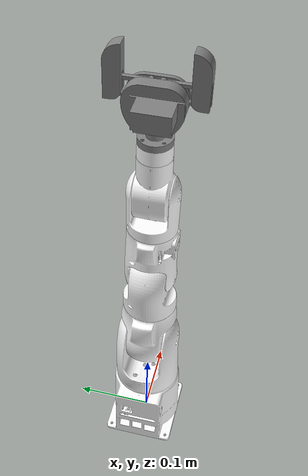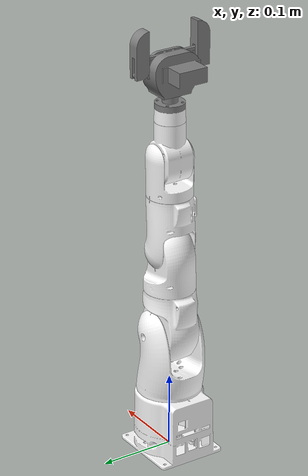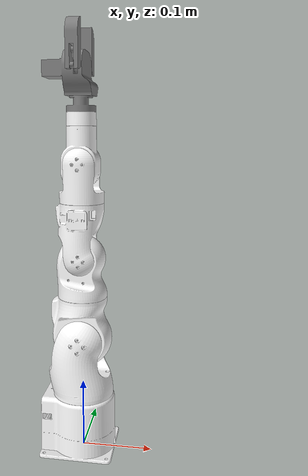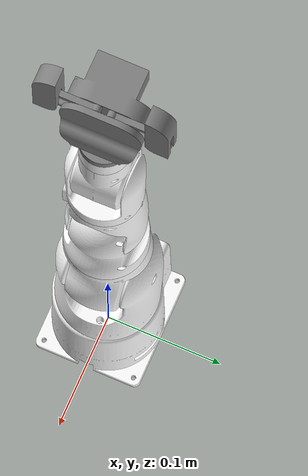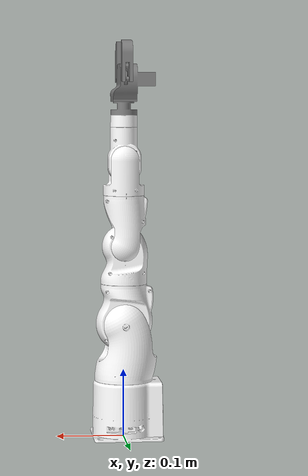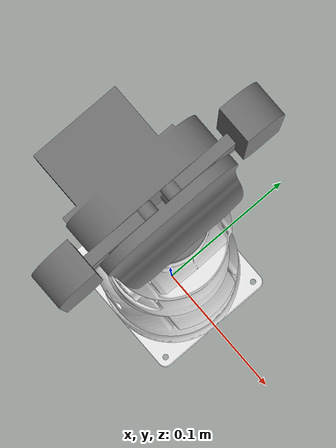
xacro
<?xml version="1.0" ?>
<!-- |    This document was autogenerated by xacro from myarm_300_pi_thorgripper.urdf  | -->
<!-- |    EDITING THIS FILE BY HAND IS NOT RECOMMENDED                                 | -->
<robot name="myarm_300_pi_thorgripper">

<!-- ===== Custom Materials ===== -->
<material name="white_arm">
  <color rgba="1.0 1.0 1.0 1.0"/>
</material>

<material name="gray_part">
  <color rgba="0.5 0.5 0.5 1.0"/>
</material>

  <!-- Links definitions -->

  <link name="base">
    <visual>
      <geometry>
        <mesh filename="package://myarm_300_pi/meshes/base.stl"/>
      </geometry>
      <origin rpy=" 0 0 0" xyz="0.0 0 0 "/>
      <material name="white_arm"/>
    </visual>
    <collision>
      <geometry>
        <mesh filename="package://myarm_300_pi/meshes/base.stl"/>
      </geometry>
      <origin rpy=" 0 0 0" xyz="0.0 0 0 "/>
    </collision>
  </link>

  <link name="link1">
    <visual>
      <geometry>
        <mesh filename="package://myarm_300_pi/meshes/j1.stl"/>
      </geometry>
      <origin rpy=" 0 0 0" xyz="0.0 0 -0.086 "/>
      <material name="white_arm"/>
    </visual>
    <collision>
      <geometry>
        <mesh filename="package://myarm_300_pi/meshes/j1.stl"/>
      </geometry>
      <origin rpy=" 0 0 0" xyz="0.0 0 -0.086 "/>
    </collision>
  </link>

  <link name="link2">
    <visual>
      <geometry>
        <mesh filename="package://myarm_300_pi/meshes/j2.stl"/>
      </geometry>
      <origin rpy=" 3.14159 0 -1.5708 " xyz="0.0 0 0.0 "/>
      <material name="white_arm"/>
    </visual>
    <collision>
      <geometry>
        <mesh filename="package://myarm_300_pi/meshes/j2.stl"/>
      </geometry>
      <origin rpy=" 3.14159 0 -1.5708" xyz="0.0 0 0.0 "/>
    </collision>
  </link>

  <link name="link3">
    <visual>
      <geometry>
        <mesh filename="package://myarm_300_pi/meshes/j3.stl"/>
      </geometry>
      <origin rpy=" 0 0 0" xyz="0.0 0 -0.056 "/>
      <material name="white_arm"/>
    </visual>
    <collision>
      <geometry>
        <mesh filename="package://myarm_300_pi/meshes/j3.stl"/>
      </geometry>
      <origin rpy=" 0 0 0" xyz="0.0 0 -0.056"/>
      <material name="white_arm"/>
    </collision>
  </link>

  <link name="link4">
    <visual>
      <geometry>
        <mesh filename="package://myarm_300_pi/meshes/j4.stl"/>
      </geometry>
      <origin rpy="0 0 1.5708" xyz="0.0 0.000 0 "/>
      <material name="white_arm"/>
    </visual>
    <collision>
      <geometry>
        <mesh filename="package://myarm_300_pi/meshes/j4.stl"/>
      </geometry>
      <origin rpy="0 0 1.5708" xyz="0.0 0.000 0 "/>
    </collision>
  </link>

  <link name="link5">
    <visual>
      <geometry>
        <mesh filename="package://myarm_300_pi/meshes/j5.stl"/>
      </geometry>
      <origin rpy=" 0 0 0" xyz="0 0.00 -0.0525 "/>
      <material name="white_arm"/>
    </visual>
    <collision>
      <geometry>
        <mesh filename="package://myarm_300_pi/meshes/j5.stl"/>
      </geometry>
      <origin rpy=" 0 0 0" xyz="0 0.00 -0.0525 "/>
    </collision>
  </link>

  <link name="link6">
    <visual>
      <geometry>
        <mesh filename="package://myarm_300_pi/meshes/j6.stl"/>
      </geometry>
      <origin rpy=" 0 0 1.5708" xyz="0.0 0.000 -0.0 "/>
      <material name="white_arm"/>
    </visual>
    <collision>
      <geometry>
        <mesh filename="package://myarm_300_pi/meshes/j6.stl"/>
      </geometry>
      <origin rpy=" 0 0 1.5708" xyz="0.0 0.000 -0.0 "/>
    </collision>
  </link>

  <link name="link7">
    <visual>
      <geometry>
        <mesh filename="package://myarm_300_pi/meshes/j7.stl"/>
      </geometry>
      <origin rpy=" 0 0 0" xyz="0.0002 -0.0002 -0.0185 "/>
      <material name="white_arm"/>
    </visual>
    <collision>
      <geometry>
        <mesh filename="package://myarm_300_pi/meshes/j7.stl"/>
      </geometry>
      <origin rpy=" 0 0 0" xyz="0.0002 -0.0002 -0.0185 "/>
    </collision>
  </link>

  <link name="gripper_base">
    <inertial>
      <origin rpy="0 0 0" xyz="0 0 0"/>
      <mass value="1.0"/>
      <inertia ixx="1.0" ixy="0.0" ixz="0.0" iyy="1.0" iyz="0.0" izz="1.0"/>
    </inertial>
    <visual>
      <origin rpy="0 0 0" xyz="0 0 0"/>
      <geometry>
        <mesh filename="package://myarm_300_pi/meshes/GripperBase.stl" scale="0.001 0.001 0.001"/>
      </geometry>
      <material name="gray_part"/>
    </visual>
    <collision>
      <origin rpy="0 0 0" xyz="0 0 0.0275"/>
      <geometry>
        <box size="0.065 0.0348 0.055"/>
      </geometry>
    </collision>
    <collision>
      <origin rpy="0 0 0" xyz="-0.004250 0.03125 0.0325"/>
      <geometry>
        <box size="0.0406 0.0277 0.020"/>
      </geometry>
    </collision>
  </link>

  <link name="gripper_mid_point">
    <inertial>
      <origin rpy="0 0 0" xyz="0 0 0"/>
      <mass value="1.0"/>
      <inertia ixx="1.0" ixy="0.0" ixz="0.0" iyy="1.0" iyz="0.0" izz="1.0"/>
    </inertial>
  </link>
  <link name="gripper_arm_gear_right">
    <inertial>
      <origin rpy="0 0 0" xyz="0 0 0"/>
      <mass value="1.0"/>
      <inertia ixx="1.0" ixy="0.0" ixz="0.0" iyy="1.0" iyz="0.0" izz="1.0"/>
    </inertial>
    <visual>
      <origin rpy="0 -1.570796326795 1.570796326795" xyz="0 0 0"/>
      <geometry>
        <mesh filename="package://myarm_300_pi/meshes/GripperArmGear.stl" scale="0.001 0.001 0.001"/>
      </geometry>
      <material name="gray_part"/>
    </visual>
    <collision>
      <origin rpy="0 0 0" xyz="0.0175 -0.0025 0.0"/>
      <geometry>
        <box size="0.035 0.005 0.004"/>
      </geometry>
    </collision>
  </link>

  <link name="gripper_arm_gear_left">
    <inertial>
      <origin rpy="0 0 0" xyz="0 0 0"/>
      <mass value="1.0"/>
      <inertia ixx="1.0" ixy="0.0" ixz="0.0" iyy="1.0" iyz="0.0" izz="1.0"/>
    </inertial>
    <visual>
      <origin rpy="0 1.570796326795 -1.570796326795" xyz="0 0 0"/>
      <geometry>
        <mesh filename="package://myarm_300_pi/meshes/GripperArmGear.stl" scale="0.001 0.001 0.001"/>
      </geometry>
      <material name="gray_part"/>
    </visual>
    <collision>
      <origin rpy="0 0 0" xyz="-0.0175 -0.0025 0.0"/>
      <geometry>
        <box size="0.035 0.005 0.004"/>
      </geometry>
    </collision>
  </link>

  <link name="gripper_arm_simple_right">
    <inertial>
      <origin rpy="0 0 0" xyz="0 0 0"/>
      <mass value="1.0"/>
      <inertia ixx="1.0" ixy="0.0" ixz="0.0" iyy="1.0" iyz="0.0" izz="1.0"/>
    </inertial>
    <visual>
      <origin rpy="0 -1.570796326795 1.570796326795" xyz="0 0 0"/>
      <geometry>
        <mesh filename="package://myarm_300_pi/meshes/GripperArm.stl" scale="0.001 0.001 0.001"/>
      </geometry>
      <material name="gray_part"/>
    </visual>
    <collision>
      <origin rpy="0 0 0" xyz="0.0175 -0.0025 0.0"/>
      <geometry>
        <box size="0.035 0.005 0.004"/>
      </geometry>
    </collision>
  </link>

  <link name="gripper_arm_simple_left">
    <inertial>
      <origin rpy="0 0 0" xyz="0 0 0"/>
      <mass value="1.0"/>
      <inertia ixx="1.0" ixy="0.0" ixz="0.0" iyy="1.0" iyz="0.0" izz="1.0"/>
    </inertial>
    <visual>
      <origin rpy="0 1.570796326795 -1.570796326795" xyz="0 0 0"/>
      <geometry>
        <mesh filename="package://myarm_300_pi/meshes/GripperArm.stl" scale="0.001 0.001 0.001"/>
      </geometry>
      <material name="gray_part"/>
    </visual>
    <collision>
      <origin rpy="0 0 0" xyz="-0.0175 -0.0025 0.0"/>
      <geometry>
        <box size="0.035 0.005 0.004"/>
      </geometry>
    </collision>
  </link>

  <link name="gripper_finger_right">
    <inertial>
      <origin rpy="0 0 0" xyz="0 0 0"/>
      <mass value="1.0"/>
      <inertia ixx="1.0" ixy="0.0" ixz="0.0" iyy="1.0" iyz="0.0" izz="1.0"/>
    </inertial>
    <visual>
      <origin rpy="0 0 0" xyz="0 0 0"/>
      <geometry>
        <mesh filename="package://myarm_300_pi/meshes/GripperFinger.stl" scale="0.001 0.001 0.001"/>
      </geometry>
      <material name="gray_part"/>
    </visual>
    <collision>
      <origin rpy="0 0 0" xyz="0.00525 0.026 0.00775"/>
      <geometry>
        <box size="0.0185 0.06 0.0155"/>
      </geometry>
    </collision>
  </link>

  <link name="gripper_finger_left">
    <inertial>
      <origin rpy="0 0 0" xyz="0 0 0"/>
      <mass value="1.0"/>
      <inertia ixx="1.0" ixy="0.0" ixz="0.0" iyy="1.0" iyz="0.0" izz="1.0"/>
    </inertial>
    <visual>
      <origin rpy="0 0 0" xyz="0 0 0"/>
      <geometry>
        <mesh filename="package://myarm_300_pi/meshes/GripperFinger.stl" scale="0.001 0.001 0.001"/>
      </geometry>
      <material name="gray_part"/>
    </visual>
    <collision>
      <origin rpy="0 0 0" xyz="0.00525 0.026 0.00775"/>
      <geometry>
        <box size="0.0185 0.06 0.0155"/>
      </geometry>
    </collision>
  </link>

  <!-- Joints definitions -->

  <joint name="joint1" type="revolute">
    <axis xyz="0 0 1"/>
    <limit effort="1000.0" lower="-2.7925" upper="2.7925" velocity="0"/>
    <parent link="base"/>
    <child link="link1"/>
    <origin rpy="0 0 0" xyz="0 0 0.1695"/>
  </joint>

  <joint name="joint2" type="revolute">
    <axis xyz="0 0 1"/>
    <limit effort="1000.0" lower="-1.2217" upper="2.0071" velocity="0"/>
    <parent link="link1"/>
    <child link="link2"/>
    <origin rpy="-1.5708 0 0" xyz="0 0  0"/>
  </joint>

  <joint name="joint3" type="revolute">
    <axis xyz=" 0 0 1"/>
    <limit effort="1000.0" lower="-2.9670" upper="2.9670" velocity="0"/>
    <parent link="link2"/>
    <child link="link3"/>
    <origin rpy="1.5708 0 0" xyz="0 -0.1155 0   "/>
  </joint>

  <joint name="joint4" type="revolute">
    <axis xyz=" 0 0 1"/>
    <limit effort="1000.0" lower="-1.9722" upper="1.3089" velocity="0"/>
    <parent link="link3"/>
    <child link="link4"/>
    <origin rpy="1.5708 0 0" xyz="0.0 0 0.0"/>
  </joint>

  <joint name="joint5" type="revolute">
    <axis xyz="0 0 1"/>
    <limit effort="1000.0" lower="-2.9670" upper="2.9670" velocity="0"/>
    <parent link="link4"/>
    <child link="link5"/>
    <origin rpy="-1.5708 0 0" xyz="0 0.1278 0"/>
  </joint>

  <joint name="joint6" type="revolute">
    <axis xyz="0 0 1"/>
    <limit effort="1000.0" lower="-2.0071" upper="2.0071" velocity="0"/>
    <parent link="link5"/>
    <child link="link6"/>
    <origin rpy="1.5708 0 0" xyz="0 0.0 0"/>
  </joint>

  <joint name="joint7" type="revolute">
    <axis xyz="0 0 1"/>
    <limit effort="1000.0" lower="-3.14159" upper="3.14159" velocity="0"/>
    <parent link="link6"/>
    <child link="link7"/>
    <origin rpy="-1.5708 0 0" xyz="0 0.066 0"/>
  </joint>

<link name="flange_link">
  <visual>
    <origin xyz="0 0 0" rpy="0 0 0"/>
    <geometry>
      <mesh filename="package://myarm_300_pi/meshes/flange.stl" scale="0.001 0.001 0.001"/>
    </geometry>
    <material name="gray_part"/>
  </visual>

  <collision>
    <origin xyz="0 0 0" rpy="0 0 0"/>
    <geometry>
      <mesh filename="package://myarm_300_pi/meshes/flange.stl" scale="0.001 0.001 0.001"/>
    </geometry>
  </collision>
</link>

<joint name="flange_joint" type="fixed">
  <parent link="link7"/>
  <child link="flange_link"/>
  <origin xyz="0 0 -0.001" rpy="0 0 0"/>
</joint>

<joint name="joint7_to_gripper_base" type="fixed">
  <parent link="flange_link"/>
  <child link="gripper_base"/>
  <origin rpy="0 0 1.5708" xyz="0 0 0.02"/>
</joint>

  <joint name="gripperbase_to_midpoint" type="fixed">
    <parent link="gripper_base"/>
    <child link="gripper_mid_point"/>
    <origin rpy="0 0 0" xyz="0 0 0.075"/>
  </joint>

  <joint name="endeffector_gripper" type="revolute">
    <parent link="gripper_base"/>
    <child link="gripper_arm_gear_right"/>
    <origin rpy="0 0 0" xyz="0.0145 0.00275 0.0325"/>
    <axis xyz="0 1 0"/>
    <limit effort="4.0" lower="-1.570796326795" upper="0" velocity="1.0"/>
  </joint>

  <joint name="gripperbase_to_armgearleft" type="revolute">
    <parent link="gripper_base"/>
    <child link="gripper_arm_gear_left"/>
    <origin rpy="0 0 0" xyz="-0.0145 0.00275 0.0325"/>
    <axis xyz="0 1 0"/>
    <limit effort="4.0" lower="0" upper="1.570796326795" velocity="1.0"/>
    <mimic joint="endeffector_gripper" multiplier="-1"/>
  </joint>

  <joint name="gripperbase_to_armsimpleright" type="revolute">
    <parent link="gripper_base"/>
    <child link="gripper_arm_simple_right"/>
    <origin rpy="0 0 0" xyz="0.006 0.00275 0.051"/>
    <axis xyz="0 1 0"/>
    <limit effort="4.0" lower="-1.570796326795" upper="0" velocity="1.0"/>
    <mimic joint="endeffector_gripper" multiplier="1"/>
  </joint>

  <joint name="gripperbase_to_armsimpleleft" type="revolute">
    <parent link="gripper_base"/>
    <child link="gripper_arm_simple_left"/>
    <origin rpy="0 0 0" xyz="-0.006 0.00275 0.051"/>
    <axis xyz="0 1 0"/>
    <limit effort="4.0" lower="0" upper="1.570796326795" velocity="1.0"/>
    <mimic joint="endeffector_gripper" multiplier="-1"/>
  </joint>

  <joint name="armgearright_to_fingerright" type="revolute">
    <parent link="gripper_arm_gear_right"/>
    <child link="gripper_finger_right"/>
    <origin rpy="-1.570796326795 3.14159265359 0" xyz="0.035 -0.01023 0"/>
    <axis xyz="0 0 1"/>
    <limit effort="4.0" lower="0" upper="1.570796326795" velocity="1.0"/>
    <mimic joint="endeffector_gripper" multiplier="-1"/>
  </joint>

  <joint name="armgearleft_to_fingerleft" type="revolute">
    <parent link="gripper_arm_gear_left"/>
    <child link="gripper_finger_left"/>
    <origin rpy="1.570796326795 0 0" xyz="-0.035 0.005175 0"/>
    <axis xyz="0 0 1"/>
    <limit effort="4.0" lower="0" upper="1.570796326795" velocity="1.0"/>
    <mimic joint="endeffector_gripper" multiplier="-1"/>
  </joint>

  <!-- End-effector dummy link -->

  <link name="endeffector">
    <!-- No visual or collision needed, just a reference frame -->
  </link>
  <!-- Fixed transform from joint7 to end-effector -->
  <joint name="link7_to_endeffector" type="fixed">
    <parent link="link7"/>
    <child link="endeffector"/>
    <origin rpy="0 0 0" xyz="0.0 0.0 0.1"/>
  </joint>
</robot>
